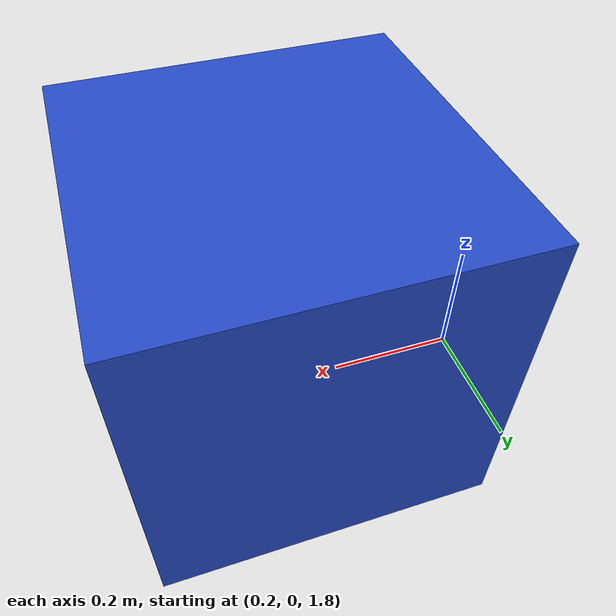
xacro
<?xml version="1.0"?>
<robot name="obstacle" xmlns:xacro="http://www.ros.org/wiki/xacro">

  <!-- Import shared components -->
  <xacro:include filename="$(find robot_sim)/urdf/shared.xacro" />

  <!-- ros_control plugin -->
  <gazebo>
    <plugin name="gazebo_ros_control" filename="libgazebo_ros_control.so">
      <robotNamespace>/obstacle</robotNamespace>
      <robotSimType>gazebo_ros_control/DefaultRobotHWSim</robotSimType>
    </plugin>
  </gazebo>

  <!-- Base link -->
  <link name="world"/>

  <joint name="obj1_joint" type="fixed">
    <parent link="world"/>
    <child link="obj1"/>
  </joint>

  <link name="obj1">
    <collision>
      <origin xyz="0.5 0 2" rpy="0 0 0"/>
      <geometry>
	      <box size="0.5 0.5 0.5"/>
      </geometry>
    </collision>

    <visual>
      <origin xyz="0.5 0 2" rpy="0 0 0"/>
      <geometry>
	      <box size="0.5 0.5 0.5"/>
      </geometry>
      <material name="blue"/>
    </visual>

    <inertial>
      <origin xyz="0.5 0 2" rpy="0 0 0"/>
      <mass value="1.0"/>
      <inertia
        ixx="1.0" ixy="0.0" ixz="0.0"
        iyy="1.0" iyz="0.0"
        izz="1.0"/>
    </inertial>
  </link>

  <gazebo reference="obj1">
    <material>Gazebo/Blue</material>
  </gazebo>

</robot>
